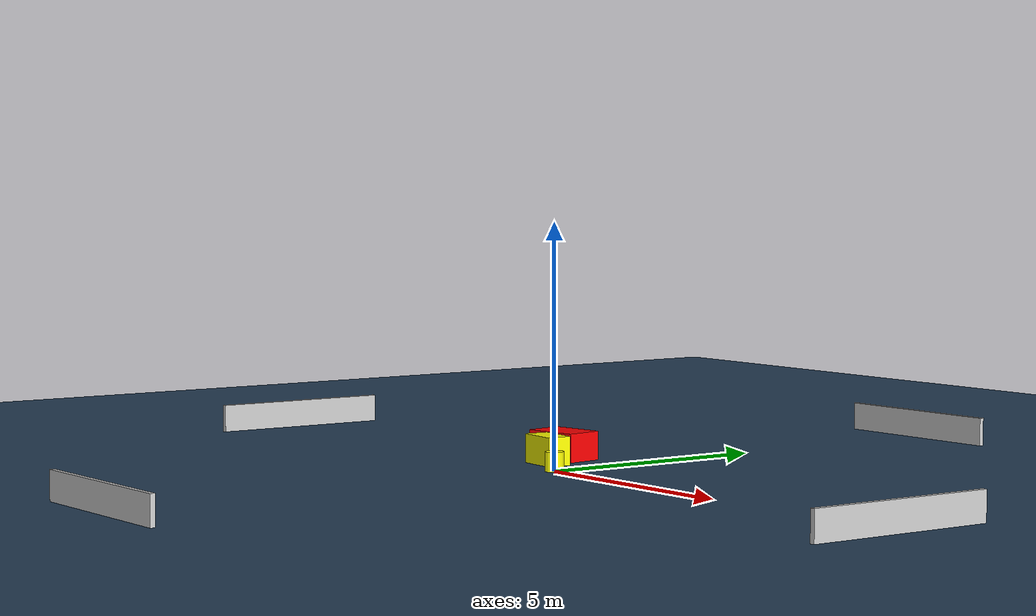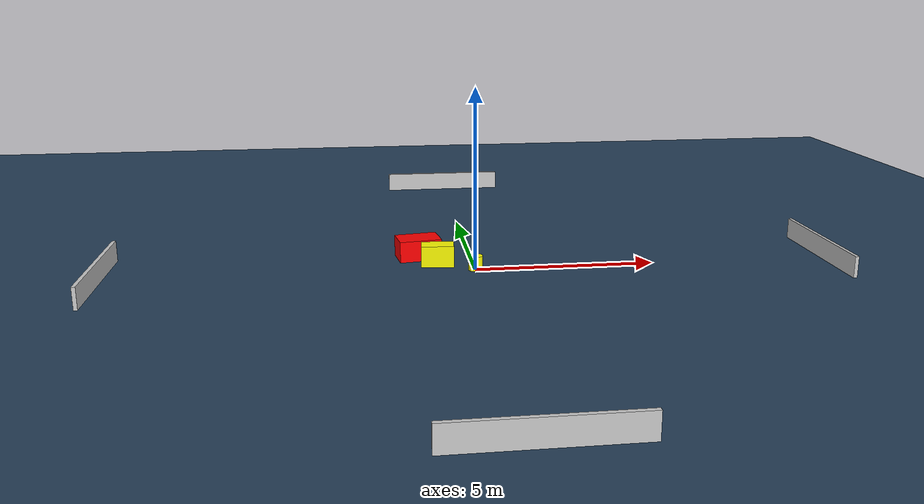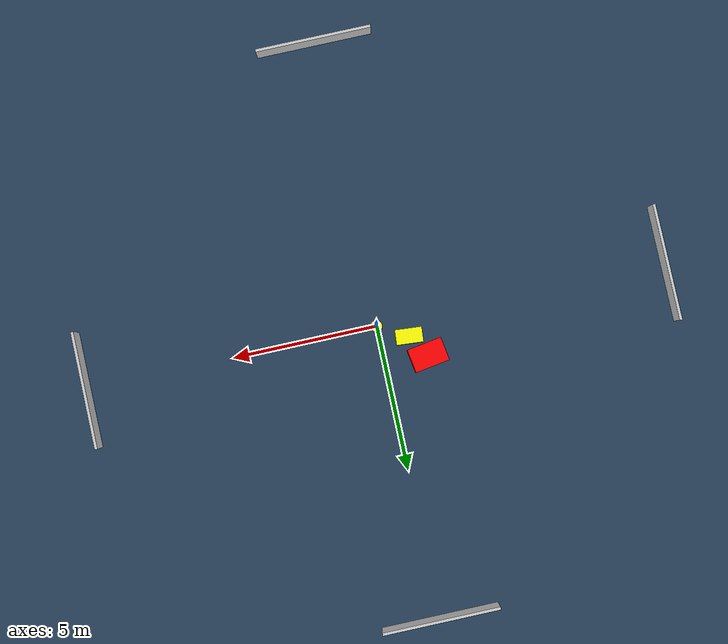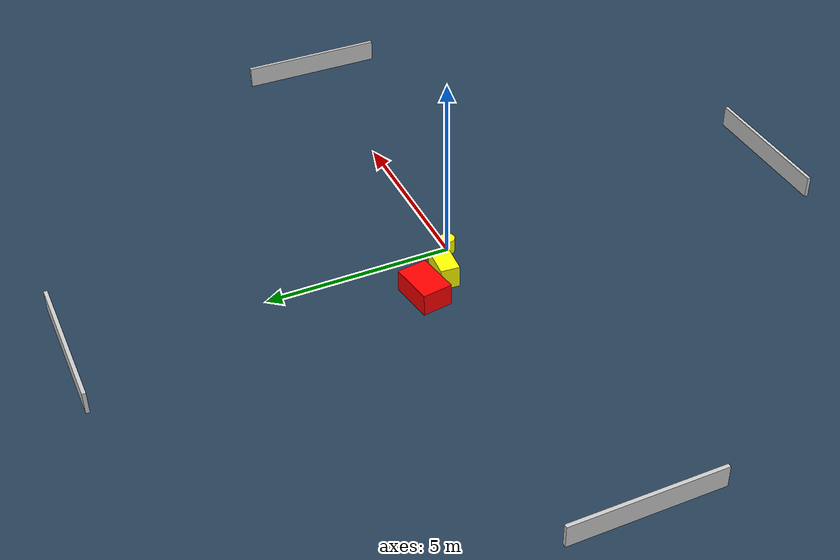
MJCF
<?xml version="1.0" ?>
<mujoco model="generated_environment">
  <option timestep="0.01" integrator="RK4" cone="elliptic"/>
  <default>
    <geom density="1"/>
  </default>
  <asset>
    <texture builtin="gradient" height="3072" name="skybox" rgb1="0.3 0.5 0.7" rgb2="0 0 0" type="skybox" width="512"/>
    <texture builtin="checker" height="300" name="groundplane" rgb1="0.2 0.3 0.4" rgb2="0.1 0.2 0.3" type="2d" width="300"/>
    <material name="groundplane" reflectance="0.2" texrepeat="5 5" texture="groundplane"/>
  </asset>
  <worldbody>
    <light dir="0 0 -1" directional="true" pos="0 0 1.5"/>
    <geom condim="3" friction="0.5 0.005 0.001" material="groundplane" name="floor" pos="0 0 0" size="0 0 0.05" type="plane"/>
    <body name="walls">
      <geom name="wall_1" condim="4" pos="-10.0 0.0 0.3" rgba="0.800000011920929 0.800000011920929 0.800000011920929 1.0" size="0.05 2.0 0.3" type="box"/>
      <geom name="wall_2" condim="4" pos="10.0 0.0 0.3" rgba="0.800000011920929 0.800000011920929 0.800000011920929 1.0" size="0.05 2.0 0.3" type="box"/>
      <geom name="wall_3" condim="4" pos="0.0 -10.0 0.3" rgba="0.800000011920929 0.800000011920929 0.800000011920929 1.0" size="2.0 0.05 0.3" type="box"/>
      <geom name="wall_4" condim="4" pos="0.0 10.0 0.3" rgba="0.800000011920929 0.800000011920929 0.800000011920929 1.0" size="2.0 0.05 0.3" type="box"/>
    </body>
    <body name="robot">
      <joint name="joint_x" type="slide" pos="0 0 0" axis="1 0 0"/>
      <joint name="joint_y" type="slide" pos="0 0 0" axis="0 1 0"/>
      <geom name="robot" type="cylinder" pos="0.0 0.0 0.2" size="0.2 0.2 0.0" mass="5.0" friction="1.0 0.005 0.0001" condim="4" rgba="1.0 1.0 0.0 1.0"/>
    </body>
    <body name="obstacle_1_movable">
      <geom name="obstacle_1_movable" condim="4" pos="-0.9956507436709253 0.5553488617352632 0.3" euler="0 0 265.6322606830317" friction="0.0 0.005 0.001" rgba="1.0 1.0 0.0 1.0" size="0.25691371239547117 0.4553214366388033 0.3" type="box" mass="0.1"/>
      <joint type="free"/>
    </body>
    <body name="obstacle_2_static">
      <geom name="obstacle_2_static" condim="4" pos="-1.4853970764423707 1.3180436097996973 0.3" euler="0 0 8.890015186761374" friction="0.0 0.005 0.001" rgba="1.0 0.0 0.0 1.0" size="0.600454554423818 0.40596768882299006 0.3" type="box"/>
    </body>
  </worldbody>
  <actuator>
    <motor name="actuator_x" joint="joint_x" gear="1" ctrlrange="-1 1"/>
    <motor name="actuator_y" joint="joint_y" gear="1" ctrlrange="-1 1"/>
  </actuator>
</mujoco>
